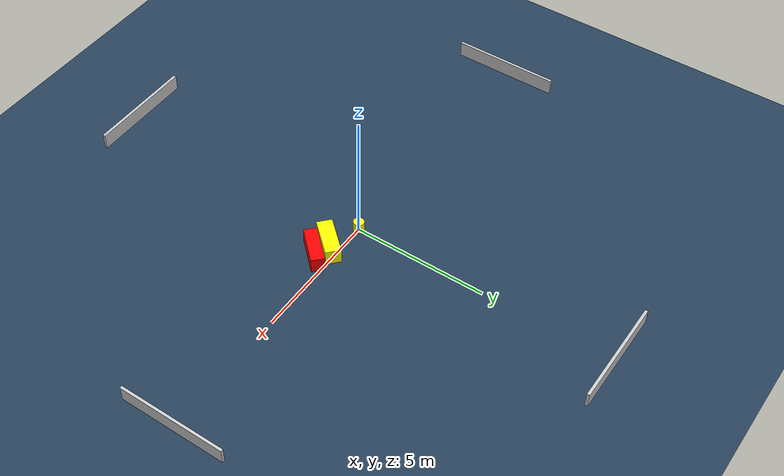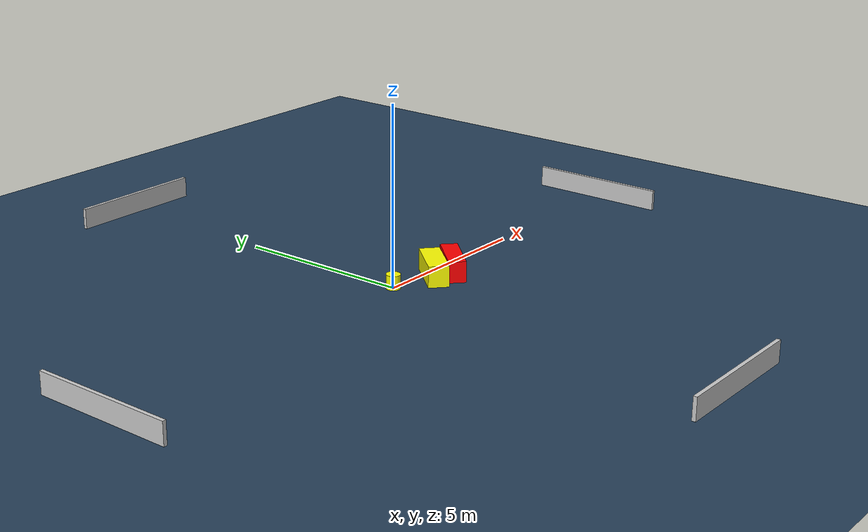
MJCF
<?xml version="1.0" ?>
<mujoco model="generated_environment">
  <option timestep="0.01" integrator="RK4" cone="elliptic"/>
  <default>
    <geom density="1"/>
  </default>
  <asset>
    <texture builtin="gradient" height="3072" name="skybox" rgb1="0.3 0.5 0.7" rgb2="0 0 0" type="skybox" width="512"/>
    <texture builtin="checker" height="300" name="groundplane" rgb1="0.2 0.3 0.4" rgb2="0.1 0.2 0.3" type="2d" width="300"/>
    <material name="groundplane" reflectance="0.2" texrepeat="5 5" texture="groundplane"/>
  </asset>
  <worldbody>
    <light dir="0 0 -1" directional="true" pos="0 0 1.5"/>
    <geom condim="3" friction="0.5 0.005 0.001" material="groundplane" name="floor" pos="0 0 0" size="0 0 0.05" type="plane"/>
    <body name="walls">
      <geom name="wall_1" condim="4" pos="-10.0 0.0 0.3" rgba="0.800000011920929 0.800000011920929 0.800000011920929 1.0" size="0.05 2.0 0.3" type="box"/>
      <geom name="wall_2" condim="4" pos="10.0 0.0 0.3" rgba="0.800000011920929 0.800000011920929 0.800000011920929 1.0" size="0.05 2.0 0.3" type="box"/>
      <geom name="wall_3" condim="4" pos="0.0 -10.0 0.3" rgba="0.800000011920929 0.800000011920929 0.800000011920929 1.0" size="2.0 0.05 0.3" type="box"/>
      <geom name="wall_4" condim="4" pos="0.0 10.0 0.3" rgba="0.800000011920929 0.800000011920929 0.800000011920929 1.0" size="2.0 0.05 0.3" type="box"/>
    </body>
    <body name="robot">
      <joint name="joint_x" type="slide" pos="0 0 0" axis="1 0 0"/>
      <joint name="joint_y" type="slide" pos="0 0 0" axis="0 1 0"/>
      <geom name="robot" type="cylinder" pos="0.0 0.0 0.2" size="0.2 0.2 0.0" mass="5.0" friction="1.0 0.005 0.0001" condim="4" rgba="1.0 1.0 0.0 1.0"/>
    </body>
    <body name="obstacle_1_movable">
      <geom name="obstacle_1_movable" condim="4" pos="1.2753803868155342 -0.3657894495681569 0.3" euler="0 0 48.17331495738517" friction="0.0 0.005 0.001" rgba="1.0 1.0 0.0 1.0" size="0.7226245952854999 0.285275020112216 0.3" type="box" mass="0.1"/>
      <joint type="free"/>
    </body>
    <body name="obstacle_2_static">
      <geom name="obstacle_2_static" condim="4" pos="1.859646728660575 -0.5629051648202623 0.3" euler="0 0 46.632474222924586" friction="0.0 0.005 0.001" rgba="1.0 0.0 0.0 1.0" size="0.7132814724469159 0.24127213817531312 0.3" type="box"/>
    </body>
  </worldbody>
  <actuator>
    <motor name="actuator_x" joint="joint_x" gear="1" ctrlrange="-1 1"/>
    <motor name="actuator_y" joint="joint_y" gear="1" ctrlrange="-1 1"/>
  </actuator>
</mujoco>
